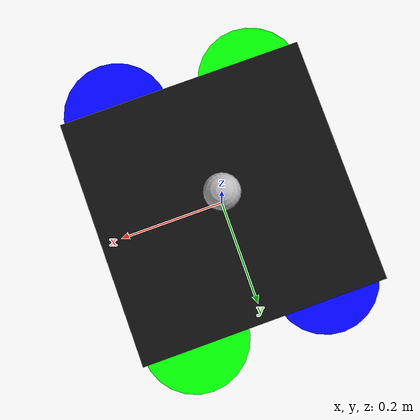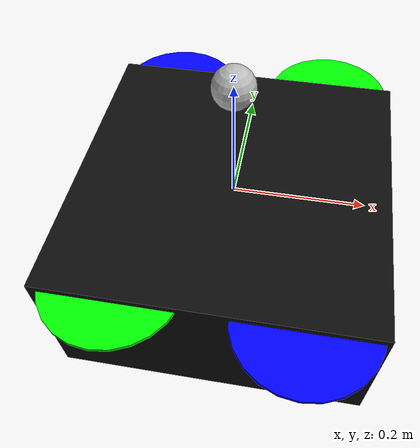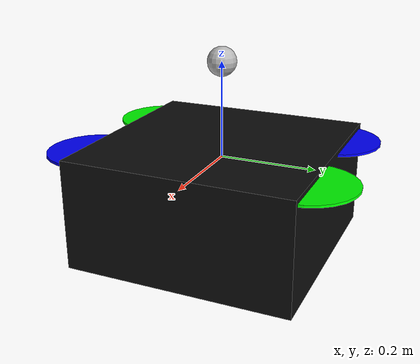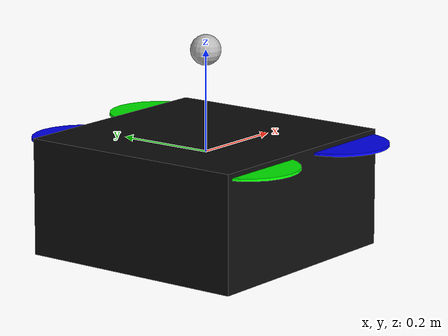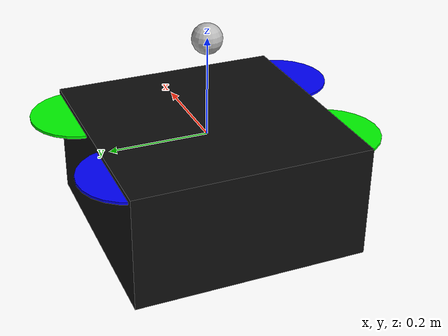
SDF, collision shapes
<?xml version='1.0'?>
<sdf version="1.9">
  <model name="decco">
    <include>
      <uri>model://decco_base</uri>
    </include>

    <!-- plugins -->
    <plugin filename="gz-sim-joint-state-publisher-system"
      name="gz::sim::systems::JointStatePublisher">
    </plugin>
    <plugin filename="gz-sim-lift-drag-system"
        name="gz::sim::systems::LiftDrag">
      <a0>0.3</a0>
      <alpha_stall>1.4</alpha_stall>
      <cla>4.2500</cla>
      <cda>0.10</cda>
      <cma>0.0</cma>
      <cla_stall>-0.025</cla_stall>
      <cda_stall>0.0</cda_stall>
      <cma_stall>0.0</cma_stall>
      <area>0.002</area>
      <air_density>1.2041</air_density>
      <cp>0.084 0 0</cp>
      <forward>0 1 0</forward>
      <upward>0 0 1</upward>
      <link_name>decco_base::rotor_0</link_name>
    </plugin>
    <plugin filename="gz-sim-lift-drag-system"
        name="gz::sim::systems::LiftDrag">
      <a0>0.3</a0>
      <alpha_stall>1.4</alpha_stall>
      <cla>4.2500</cla>
      <cda>0.10</cda>
      <cma>0.0</cma>
      <cla_stall>-0.025</cla_stall>
      <cda_stall>0.0</cda_stall>
      <cma_stall>0.0</cma_stall>
      <area>0.002</area>
      <air_density>1.2041</air_density>
      <cp>-0.084 0 0</cp>
      <forward>0 -1 0</forward>
      <upward>0 0 1</upward>
      <link_name>decco_base::rotor_0</link_name>
    </plugin>

    <plugin filename="gz-sim-lift-drag-system"
        name="gz::sim::systems::LiftDrag">
      <a0>0.3</a0>
      <alpha_stall>1.4</alpha_stall>
      <cla>4.2500</cla>
      <cda>0.10</cda>
      <cma>0.0</cma>
      <cla_stall>-0.025</cla_stall>
      <cda_stall>0.0</cda_stall>
      <cma_stall>0.0</cma_stall>
      <area>0.002</area>
      <air_density>1.2041</air_density>
      <cp>0.084 0 0</cp>
      <forward>0 1 0</forward>
      <upward>0 0 1</upward>
      <link_name>decco_base::rotor_1</link_name>
    </plugin>
    <plugin filename="gz-sim-lift-drag-system"
        name="gz::sim::systems::LiftDrag">
      <a0>0.3</a0>
      <alpha_stall>1.4</alpha_stall>
      <cla>4.2500</cla>
      <cda>0.10</cda>
      <cma>0.0</cma>
      <cla_stall>-0.025</cla_stall>
      <cda_stall>0.0</cda_stall>
      <cma_stall>0.0</cma_stall>
      <area>0.002</area>
      <air_density>1.2041</air_density>
      <cp>-0.084 0 0</cp>
      <forward>0 -1 0</forward>
      <upward>0 0 1</upward>
      <link_name>decco_base::rotor_1</link_name>
    </plugin>

    <plugin filename="gz-sim-lift-drag-system"
        name="gz::sim::systems::LiftDrag">
      <a0>0.3</a0>
      <alpha_stall>1.4</alpha_stall>
      <cla>4.2500</cla>
      <cda>0.10</cda>
      <cma>0.0</cma>
      <cla_stall>-0.025</cla_stall>
      <cda_stall>0.0</cda_stall>
      <cma_stall>0.0</cma_stall>
      <area>0.002</area>
      <air_density>1.2041</air_density>
      <cp>0.084 0 0</cp>
      <forward>0 -1 0</forward>
      <upward>0 0 1</upward>
      <link_name>decco_base::rotor_2</link_name>
    </plugin>
    <plugin filename="gz-sim-lift-drag-system"
        name="gz::sim::systems::LiftDrag">
      <a0>0.3</a0>
      <alpha_stall>1.4</alpha_stall>
      <cla>4.2500</cla>
      <cda>0.10</cda>
      <cma>0.0</cma>
      <cla_stall>-0.025</cla_stall>
      <cda_stall>0.0</cda_stall>
      <cma_stall>0.0</cma_stall>
      <area>0.002</area>
      <air_density>1.2041</air_density>
      <cp>-0.084 0 0</cp>
      <forward>0 1 0</forward>
      <upward>0 0 1</upward>
      <link_name>decco_base::rotor_2</link_name>
    </plugin>

    <plugin filename="gz-sim-lift-drag-system"
        name="gz::sim::systems::LiftDrag">
      <a0>0.3</a0>
      <alpha_stall>1.4</alpha_stall>
      <cla>4.2500</cla>
      <cda>0.10</cda>
      <cma>0.0</cma>
      <cla_stall>-0.025</cla_stall>
      <cda_stall>0.0</cda_stall>
      <cma_stall>0.0</cma_stall>
      <area>0.002</area>
      <air_density>1.2041</air_density>
      <cp>0.084 0 0</cp>
      <forward>0 -1 0</forward>
      <upward>0 0 1</upward>
      <link_name>decco_base::rotor_3</link_name>
    </plugin>
    <plugin filename="gz-sim-lift-drag-system"
        name="gz::sim::systems::LiftDrag">
      <a0>0.3</a0>
      <alpha_stall>1.4</alpha_stall>
      <cla>4.2500</cla>
      <cda>0.10</cda>
      <cma>0.0</cma>
      <cla_stall>-0.025</cla_stall>
      <cda_stall>0.0</cda_stall>
      <cma_stall>0.0</cma_stall>
      <area>0.002</area>
      <air_density>1.2041</air_density>
      <cp>-0.084 0 0</cp>
      <forward>0 1 0</forward>
      <upward>0 0 1</upward>
      <link_name>decco_base::rotor_3</link_name>
    </plugin>

    <plugin filename="gz-sim-apply-joint-force-system"
      name="gz::sim::systems::ApplyJointForce">
      <joint_name>decco_base::rotor_0_joint</joint_name>
    </plugin>
    <plugin filename="gz-sim-apply-joint-force-system"
      name="gz::sim::systems::ApplyJointForce">
      <joint_name>decco_base::rotor_1_joint</joint_name>
    </plugin>
    <plugin filename="gz-sim-apply-joint-force-system"
      name="gz::sim::systems::ApplyJointForce">
      <joint_name>decco_base::rotor_2_joint</joint_name>
    </plugin>
    <plugin filename="gz-sim-apply-joint-force-system"
      name="gz::sim::systems::ApplyJointForce">
      <joint_name>decco_base::rotor_3_joint</joint_name>
    </plugin>

    <plugin name="ArduPilotPlugin"
      filename="ArduPilotPlugin">
      <!-- Port settings -->
      <fdm_addr>127.0.0.1</fdm_addr>
      <fdm_port_in>9002</fdm_port_in>
      <connectionTimeoutMaxCount>5</connectionTimeoutMaxCount>
      <lock_step>1</lock_step>

      <!-- Frame conventions
        Require by ArduPilot: change model and gazebo from XYZ to XY-Z coordinates
      -->
      <modelXYZToAirplaneXForwardZDown degrees="true">0 0 0 180 0 0</modelXYZToAirplaneXForwardZDown>
      <gazeboXYZToNED degrees="true">0 0 0 180 0 90</gazeboXYZToNED>

      <!-- Sensors -->
      <imuName>decco_base::imu_link::imu_sensor</imuName>

      <!--
          incoming control command [0, 1]
          so offset it by 0 to get [0, 1]
          and divide max target by 1.
          offset = 0
          multiplier = 838 max rpm / 1 = 838
        -->
      <control channel="0">
        <jointName>decco_base::rotor_0_joint</jointName>
        <useForce>1</useForce>
        <multiplier>838</multiplier>
        <offset>0</offset>
        <servo_min>1100</servo_min>
        <servo_max>1900</servo_max>
        <type>VELOCITY</type>
        <p_gain>0.20</p_gain>
        <i_gain>0</i_gain>
        <d_gain>0</d_gain>
        <i_max>0</i_max>
        <i_min>0</i_min>
        <cmd_max>2.5</cmd_max>
        <cmd_min>-2.5</cmd_min>
        <controlVelocitySlowdownSim>1</controlVelocitySlowdownSim>
      </control>

      <control channel="1">
        <jointName>decco_base::rotor_1_joint</jointName>
        <useForce>1</useForce>
        <multiplier>838</multiplier>
        <offset>0</offset>
        <servo_min>1100</servo_min>
        <servo_max>1900</servo_max>
        <type>VELOCITY</type>
        <p_gain>0.20</p_gain>
        <i_gain>0</i_gain>
        <d_gain>0</d_gain>
        <i_max>0</i_max>
        <i_min>0</i_min>
        <cmd_max>2.5</cmd_max>
        <cmd_min>-2.5</cmd_min>
        <controlVelocitySlowdownSim>1</controlVelocitySlowdownSim>
      </control>

      <control channel="2">
        <jointName>decco_base::rotor_2_joint</jointName>
        <useForce>1</useForce>
        <multiplier>-838</multiplier>
        <offset>0</offset>
        <servo_min>1100</servo_min>
        <servo_max>1900</servo_max>
        <type>VELOCITY</type>
        <p_gain>0.20</p_gain>
        <i_gain>0</i_gain>
        <d_gain>0</d_gain>
        <i_max>0</i_max>
        <i_min>0</i_min>
        <cmd_max>2.5</cmd_max>
        <cmd_min>-2.5</cmd_min>
        <controlVelocitySlowdownSim>1</controlVelocitySlowdownSim>
      </control>

      <control channel="3">
        <jointName>decco_base::rotor_3_joint</jointName>
        <useForce>1</useForce>
        <multiplier>-838</multiplier>
        <offset>0</offset>
        <servo_min>1100</servo_min>
        <servo_max>1900</servo_max>
        <type>VELOCITY</type>
        <p_gain>0.20</p_gain>
        <i_gain>0</i_gain>
        <d_gain>0</d_gain>
        <i_max>0</i_max>
        <i_min>0</i_min>
        <cmd_max>2.5</cmd_max>
        <cmd_min>-2.5</cmd_min>
        <controlVelocitySlowdownSim>1</controlVelocitySlowdownSim>
      </control>

    </plugin>

  </model>
</sdf>

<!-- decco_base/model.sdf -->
<sdf version='1.9'>
  <model name='decco_base'>
    <pose>0 0 0 0 0 0</pose>
    <link name='base_link'>
      <velocity_decay>
        <linear>0.0</linear>
        <angular>0.0</angular>
      </velocity_decay>
      <inertial>
        <pose>0 0 0 0 0 0</pose>
        <mass>1.5</mass>
        <inertia>
          <ixx>0.008</ixx>
          <ixy>0</ixy>
          <ixz>0</ixz>
          <iyy>0.015</iyy>
          <iyz>0</iyz>
          <izz>0.017</izz>
        </inertia>
      </inertial>
      <collision name='base_collision'>
        <pose>0 0 -0.08 0 0 0</pose>
        <geometry>
          <box>
            <size>0.47 0.47 0.23</size>
          </box>
        </geometry>
        <surface>
          <contact>
            <ode>
              <max_vel>100.0</max_vel>
              <min_depth>0.001</min_depth>
            </ode>
          </contact>
          <friction>
            <ode>
              <mu>100000.0</mu>
              <mu2>100000.0</mu2>
            </ode>
          </friction>
        </surface>
      </collision>
      <visual name='base_visual'>
        <geometry>
          <mesh>
            <uri>model://decco_base/meshes/iris.dae</uri>
          </mesh>
        </geometry>
        <material>
          <ambient>0.05 0.05 0.05</ambient>
          <diffuse>0.05 0.05 0.05</diffuse>
          <specular>1 1 1 1</specular>
          <pbr>
            <metal>
              <metalness>0.5</metalness>
              <roughness>0.5</roughness>
            </metal>
          </pbr>
        </material>
      </visual>

      <visual name='front_left_leg_visual'>
        <pose>0.123 0.22 -0.11 0 0 0</pose>
        <geometry>
          <cylinder>
            <radius>0.005</radius>
            <length>0.17</length>
          </cylinder>
        </geometry>
        <material>
          <ambient>0.05 0.05 0.05</ambient>
          <diffuse>0.05 0.05 0.05</diffuse>
          <specular>0.01 0.01 0.01 1.0</specular>
          <pbr>
            <metal>
              <metalness>0.5</metalness>
              <roughness>0.5</roughness>
            </metal>
          </pbr>
        </material>
      </visual>
      <visual name='front_right_leg_visual'>
        <pose>0.123 -0.22 -0.11 0 0 0</pose>
        <geometry>
          <cylinder>
            <radius>0.005</radius>
            <length>0.17</length>
          </cylinder>
        </geometry>
        <material>
          <ambient>0.05 0.05 0.05</ambient>
          <diffuse>0.05 0.05 0.05</diffuse>
          <specular>0.01 0.01 0.01 1.0</specular>
          <pbr>
            <metal>
              <metalness>0.5</metalness>
              <roughness>0.5</roughness>
            </metal>
          </pbr>
        </material>
      </visual>
      <visual name='rear_left_leg_visual'>
        <pose>-0.140 0.21 -0.11 0 0 0</pose>
        <geometry>
          <cylinder>
            <radius>0.005</radius>
            <length>0.17</length>
          </cylinder>
        </geometry>
        <material>
          <ambient>0.05 0.05 0.05</ambient>
          <diffuse>0.05 0.05 0.05</diffuse>
          <specular>0.01 0.01 0.01 1.0</specular>
          <pbr>
            <metal>
              <metalness>0.5</metalness>
              <roughness>0.5</roughness>
            </metal>
          </pbr>
        </material>
      </visual>
      <visual name='rear_right_leg_visual'>
        <pose>-0.140 -0.21 -0.11 0 0 0</pose>
        <geometry>
          <cylinder>
            <radius>0.005</radius>
            <length>0.17</length>
          </cylinder>
        </geometry>
        <material>
          <ambient>0.05 0.05 0.05</ambient>
          <diffuse>0.05 0.05 0.05</diffuse>
          <specular>0.01 0.01 0.01 1.0</specular>
          <pbr>
            <metal>
              <metalness>0.5</metalness>
              <roughness>0.5</roughness>
            </metal>
          </pbr>
        </material>
      </visual>
    </link>
    <link name='imu_link'>
      <inertial>
        <pose>0 0 0 0 0 0</pose>
        <mass>0.15</mass>
        <inertia>
          <ixx>0.00001</ixx>
          <ixy>0</ixy>
          <ixz>0</ixz>
          <iyy>0.00002</iyy>
          <iyz>0</iyz>
          <izz>0.00002</izz>
        </inertia>
      </inertial>
      <sensor name="imu_sensor" type="imu">
        <pose degrees="true">0 0 0 180 0 0</pose> <!-- IMU is rotated to FRD for Arducopter -->
        <always_on>1</always_on>
        <update_rate>1000.0</update_rate>
      </sensor>
    </link>
    <joint name='imu_joint' type='revolute'>
      <child>imu_link</child>
      <parent>base_link</parent>
      <axis>
        <xyz>0 0 1</xyz>
        <limit>
          <lower>0</lower>
          <upper>0</upper>
          <effort>0</effort>
          <velocity>0</velocity>
        </limit>
        <dynamics>
          <damping>1.0</damping>
        </dynamics>
      </axis>
    </joint>
    <link name='rotor_0'>
      <pose>0.13 -0.22 0.023 0 0 0</pose>
      <inertial>
        <pose>0 0 0 0 0 0</pose>
        <mass>0.025</mass>
        <inertia>
          <ixx>9.75e-06</ixx>
          <ixy>0</ixy>
          <ixz>0</ixz>
          <iyy>0.000166704</iyy>
          <iyz>0</iyz>
          <izz>0.000167604</izz>
        </inertia>
      </inertial>
      <collision name='rotor_0_collision'>
        <pose>0 0 0 0 0 0</pose>
        <geometry>
          <cylinder>
            <length>0.005</length>
            <radius>0.1</radius>
          </cylinder>
        </geometry>
        <surface>
          <contact>
            <ode/>
          </contact>
          <friction>
            <ode/>
          </friction>
        </surface>
      </collision>
      <visual name='rotor_0_visual'>
        <pose>0 0 0 0 0 0</pose>
        <geometry>
          <mesh>
            <scale>1 1 1</scale>
            <uri>model://decco_base/meshes/iris_prop_ccw.dae</uri>
          </mesh>
        </geometry>
        <material>
          <ambient>0 0 1</ambient>
          <diffuse>0 0 1</diffuse>
          <specular>1 1 1 1</specular>
          <pbr>
            <metal>
              <metalness>0.5</metalness>
              <roughness>0.5</roughness>
            </metal>
          </pbr>
        </material>
      </visual>
      <gravity>1</gravity>
      <velocity_decay/>
      <self_collide>0</self_collide>
    </link>
    <joint name='rotor_0_joint' type='revolute'>
      <child>rotor_0</child>
      <parent>base_link</parent>
      <axis>
        <xyz>0 0 1</xyz>
        <limit>
          <lower>-1e+16</lower>
          <upper>1e+16</upper>
        </limit>
        <dynamics>
          <damping>0.004</damping>
        </dynamics>
      </axis>
      <physics>
        <ode>
          <implicit_spring_damper>1</implicit_spring_damper>
        </ode>
      </physics>
    </joint>
    <link name='rotor_1'>
      <pose>-0.13 0.2 0.023 0 0 0</pose>
      <inertial>
        <pose>0 0 0 0 0 0</pose>
        <mass>0.025</mass>
        <inertia>
          <ixx>9.75e-06</ixx>
          <ixy>0</ixy>
          <ixz>0</ixz>
          <iyy>0.000166704</iyy>
          <iyz>0</iyz>
          <izz>0.000167604</izz>
        </inertia>
      </inertial>
      <collision name='rotor_1_collision'>
        <pose>0 0 0 0 0 0</pose>
        <geometry>
          <cylinder>
            <length>0.005</length>
            <radius>0.1</radius>
          </cylinder>
        </geometry>
        <surface>
          <contact>
            <ode/>
          </contact>
          <friction>
            <ode/>
          </friction>
        </surface>
      </collision>
      <visual name='rotor_1_visual'>
        <pose>0 0 0 0 0 0</pose>
        <geometry>
          <mesh>
            <scale>1 1 1</scale>
            <uri>model://decco_base/meshes/iris_prop_ccw.dae</uri>
          </mesh>
        </geometry>
        <material>
          <ambient>0 0 1 1</ambient>
          <diffuse>0 0 1 1</diffuse>
          <specular>1 1 1 1</specular>
          <pbr>
            <metal>
              <metalness>0.5</metalness>
              <roughness>0.5</roughness>
            </metal>
          </pbr>
        </material>
      </visual>
      <gravity>1</gravity>
      <velocity_decay/>
      <self_collide>0</self_collide>
    </link>
    <joint name='rotor_1_joint' type='revolute'>
      <child>rotor_1</child>
      <parent>base_link</parent>
      <axis>
        <xyz>0 0 1</xyz>
        <limit>
          <lower>-1e+16</lower>
          <upper>1e+16</upper>
        </limit>
        <dynamics>
          <damping>0.004</damping>
        </dynamics>
      </axis>
      <physics>
        <ode>
          <implicit_spring_damper>1</implicit_spring_damper>
        </ode>
      </physics>
    </joint>
    <link name='rotor_2'>
      <pose>0.13 0.22 0.023 0 0 0</pose>
      <inertial>
        <pose>0 0 0 0 0 0</pose>
        <mass>0.025</mass>
        <inertia>
          <ixx>9.75e-06</ixx>
          <ixy>0</ixy>
          <ixz>0</ixz>
          <iyy>0.000166704</iyy>
          <iyz>0</iyz>
          <izz>0.000167604</izz>
        </inertia>
      </inertial>
      <collision name='rotor_2_collision'>
        <pose>0 0 0 0 0 0</pose>
        <geometry>
          <cylinder>
            <length>0.005</length>
            <radius>0.1</radius>
          </cylinder>
        </geometry>
        <surface>
          <contact>
            <ode/>
          </contact>
          <friction>
            <ode/>
          </friction>
        </surface>
      </collision>
      <visual name='rotor_2_visual'>
        <pose>0 0 0 0 0 0</pose>
        <geometry>
          <mesh>
            <scale>1 1 1</scale>
            <uri>model://decco_base/meshes/iris_prop_cw.dae</uri>
          </mesh>
        </geometry>
        <material>
          <ambient>0 1 0</ambient>
          <diffuse>0 1 0</diffuse>
          <specular>1 1 1 1</specular>
          <pbr>
            <metal>
              <metalness>0.5</metalness>
              <roughness>0.5</roughness>
            </metal>
          </pbr>
        </material>
      </visual>
      <gravity>1</gravity>
      <velocity_decay/>
      <self_collide>0</self_collide>
    </link>
    <joint name='rotor_2_joint' type='revolute'>
      <child>rotor_2</child>
      <parent>base_link</parent>
      <axis>
        <xyz>0 0 1</xyz>
        <limit>
          <lower>-1e+16</lower>
          <upper>1e+16</upper>
        </limit>
        <dynamics>
          <damping>0.004</damping>
        </dynamics>
      </axis>
      <physics>
        <ode>
          <implicit_spring_damper>1</implicit_spring_damper>
        </ode>
      </physics>
    </joint>
    <link name='rotor_3'>
      <pose>-0.13 -0.2 0.023 0 0 0</pose>
      <inertial>
        <pose>0 0 0 0 0 0</pose>
        <mass>0.025</mass>
        <inertia>
          <ixx>9.75e-06</ixx>
          <ixy>0</ixy>
          <ixz>0</ixz>
          <iyy>0.000166704</iyy>
          <iyz>0</iyz>
          <izz>0.000167604</izz>
        </inertia>
      </inertial>
      <collision name='rotor_3_collision'>
        <pose>0 0 0 0 0 0</pose>
        <geometry>
          <cylinder>
            <length>0.005</length>
            <radius>0.1</radius>
          </cylinder>
        </geometry>
        <surface>
          <contact>
            <ode/>
          </contact>
          <friction>
            <ode/>
          </friction>
        </surface>
      </collision>
      <visual name='rotor_3_visual'>
        <pose>0 0 0 0 0 0</pose>
        <geometry>
          <mesh>
            <scale>1 1 1</scale>
            <uri>model://decco_base/meshes/iris_prop_cw.dae</uri>
          </mesh>
        </geometry>
        <material>
          <ambient>0 1 0</ambient>
          <diffuse>0 1 0</diffuse>
          <specular>1 1 1 1</specular>
          <pbr>
            <metal>
              <metalness>0.5</metalness>
              <roughness>0.5</roughness>
            </metal>
          </pbr>
        </material>
      </visual>
      <gravity>1</gravity>
      <velocity_decay/>
      <self_collide>0</self_collide>
    </link>
    <joint name='rotor_3_joint' type='revolute'>
      <child>rotor_3</child>
      <parent>base_link</parent>
      <axis>
        <xyz>0 0 1</xyz>
        <limit>
          <lower>-1e+16</lower>
          <upper>1e+16</upper>
        </limit>
        <dynamics>
          <damping>0.004</damping>
        </dynamics>
      </axis>
      <physics>
        <ode>
          <implicit_spring_damper>1</implicit_spring_damper>
        </ode>
      </physics>
    </joint>

    <link name="lidar_link">
      <pose>0 0 0.2 0 0 0</pose>
      <inertial>
        <mass>0.1</mass>
        <inertia>
          <ixx>0.000166667</ixx>
          <iyy>0.000166667</iyy>
          <izz>0.000166667</izz>
        </inertia>
      </inertial>
      <collision name="collision">
        <geometry>
          <sphere>
            <radius>0.03 0.03 0.03</radius>
          </sphere>
        </geometry>
      </collision>
      <visual name="visual">
        <geometry>
          <sphere>
            <radius>0.03 0.03 0.03</radius>
          </sphere>
        </geometry>
      </visual>
      <sensor name='gpu_lidar' type='gpu_lidar'>
        <pose>0 0 0 0 0 0</pose>
        <topic>lidar2</topic>
        <update_rate>10</update_rate>
        <lidar>
          <scan>
            <horizontal>
              <samples>640</samples>
              <resolution>1</resolution>
              <min_angle>-3.14159</min_angle>
              <max_angle>3.14159</max_angle>
            </horizontal>
            <vertical>
              <samples>16</samples>
              <resolution>1</resolution>
              <min_angle>-0.261799</min_angle>
              <max_angle>0.261799</max_angle>
            </vertical>
          </scan>
          <range>
            <min>0.08</min>
            <max>40.0</max>
            <resolution>0.01</resolution>
          </range>
        </lidar>
        <visualize>true</visualize>
      </sensor>
      <sensor name="imu_sensor" type="imu"> <!-- Add a lidar-frame IMU in FLU frame -->
        <pose degrees="true">0 0 0 0 0 0</pose>
        <always_on>1</always_on>
        <update_rate>1000.0</update_rate>
      </sensor>
    </link>
    <joint name="lidar_joint" type="fixed">
      <parent>base_link</parent>
      <child>lidar_link</child>
    </joint>

  </model>
</sdf>
